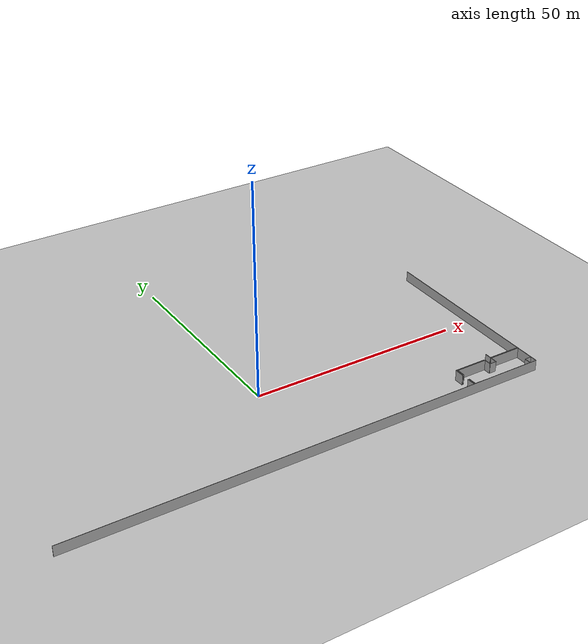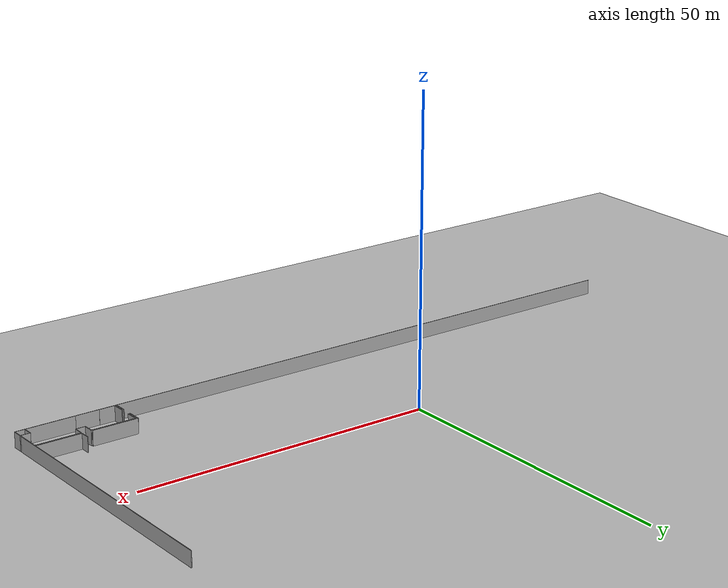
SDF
<sdf version="1.6">
 <world name="default">
  <model name="ground_plane">
   <static>1</static>
   <link name="link">
    <collision name="collision">
     <geometry><plane><normal>0 0 1</normal><size>100 100</size></plane></geometry>
     <surface><friction><ode><mu>100</mu><mu2>50</mu2></ode></friction></surface>
    </collision>
    <visual name="visual">
     <cast_shadows>0</cast_shadows>
     <geometry><plane><normal>0 0 1</normal><size>100 100</size></plane></geometry>
     <material>
      <script><uri>file://media/materials/scripts/gazebo.material</uri><name>Gazebo/Grey</name></script>
     </material>
    </visual>
   </link>
  </model>
  <model name="50057022">
   <static>1</static>
   <link name="Wall_531">
    <collision name="Wall_531_Collision">
     <geometry><box><size>2.10568604937 0.1 2.5</size></box></geometry>
     <pose>1.05284302469 0 1.25 0 0 0</pose>
    </collision>
    <visual name="Wall_531_Visual">
     <pose>1.05284302469 0 1.25 0 0 0</pose>
     <geometry><box><size>2.10568604937 0.1 2.5</size></box></geometry>
     <material>
      <script><uri>file://media/materials/scripts/gazebo.material</uri><name>Gazebo/Grey</name></script>
      <ambient>1 1 1 1</ambient>
     </material>
    </visual>
    <pose>96.0006539476 -47.5744372375 0 0 0 1.57079632679</pose>
   </link>
   <link name="Wall_532">
    <collision name="Wall_532_Collision">
     <geometry><box><size>2.11569803841 0.1 2.5</size></box></geometry>
     <pose>1.05784901921 0 1.25 0 0 0</pose>
    </collision>
    <visual name="Wall_532_Visual">
     <pose>1.05784901921 0 1.25 0 0 0</pose>
     <geometry><box><size>2.11569803841 0.1 2.5</size></box></geometry>
     <material>
      <script><uri>file://media/materials/scripts/gazebo.material</uri><name>Gazebo/Grey</name></script>
      <ambient>1 1 1 1</ambient>
     </material>
    </visual>
    <pose>96.0006539476 -43.7076549894 0 0 0 1.57079632679</pose>
   </link>
   <link name="Wall_533">
    <collision name="Wall_533_Collision">
     <geometry><box><size>7.5230592583 0.1 2.5</size></box></geometry>
     <pose>3.76152962915 0 1.25 0 0 0</pose>
    </collision>
    <visual name="Wall_533_Visual">
     <pose>3.76152962915 0 1.25 0 0 0</pose>
     <geometry><box><size>7.5230592583 0.1 2.5</size></box></geometry>
     <material>
      <script><uri>file://media/materials/scripts/gazebo.material</uri><name>Gazebo/Grey</name></script>
      <ambient>1 1 1 1</ambient>
     </material>
    </visual>
    <pose>96.0006539476 -41.591956951 0 0 0 0.0</pose>
   </link>
   <link name="Wall_534">
    <collision name="Wall_534_Collision">
     <geometry><box><size>1.70786790258 0.1 2.5</size></box></geometry>
     <pose>0.853933951289 0 1.25 0 0 0</pose>
    </collision>
    <visual name="Wall_534_Visual">
     <pose>0.853933951289 0 1.25 0 0 0</pose>
     <geometry><box><size>1.70786790258 0.1 2.5</size></box></geometry>
     <material>
      <script><uri>file://media/materials/scripts/gazebo.material</uri><name>Gazebo/Grey</name></script>
      <ambient>1 1 1 1</ambient>
     </material>
    </visual>
    <pose>103.523713206 -41.591956951 0 0 0 -1.57079632679</pose>
   </link>
   <link name="Wall_535">
    <collision name="Wall_535_Collision">
     <geometry><box><size>1.63195421353 0.1 2.5</size></box></geometry>
     <pose>0.815977106763 0 1.25 0 0 0</pose>
    </collision>
    <visual name="Wall_535_Visual">
     <pose>0.815977106763 0 1.25 0 0 0</pose>
     <geometry><box><size>1.63195421353 0.1 2.5</size></box></geometry>
     <material>
      <script><uri>file://media/materials/scripts/gazebo.material</uri><name>Gazebo/Grey</name></script>
      <ambient>1 1 1 1</ambient>
     </material>
    </visual>
    <pose>103.523713206 -43.2998248536 0 0 0 0.0</pose>
   </link>
   <link name="Wall_536">
    <collision name="Wall_536_Collision">
     <geometry><box><size>1.68239436084 0.1 2.5</size></box></geometry>
     <pose>0.841197180421 0 1.25 0 0 0</pose>
    </collision>
    <visual name="Wall_536_Visual">
     <pose>0.841197180421 0 1.25 0 0 0</pose>
     <geometry><box><size>1.68239436084 0.1 2.5</size></box></geometry>
     <material>
      <script><uri>file://media/materials/scripts/gazebo.material</uri><name>Gazebo/Grey</name></script>
      <ambient>1 1 1 1</ambient>
     </material>
    </visual>
    <pose>105.155667419 -43.2998248536 0 0 0 1.57079632679</pose>
   </link>
   <link name="Wall_537">
    <collision name="Wall_537_Collision">
     <geometry><box><size>7.67628071083 0.1 2.5</size></box></geometry>
     <pose>3.83814035541 0 1.25 0 0 0</pose>
    </collision>
    <visual name="Wall_537_Visual">
     <pose>3.83814035541 0 1.25 0 0 0</pose>
     <geometry><box><size>7.67628071083 0.1 2.5</size></box></geometry>
     <material>
      <script><uri>file://media/materials/scripts/gazebo.material</uri><name>Gazebo/Grey</name></script>
      <ambient>1 1 1 1</ambient>
     </material>
    </visual>
    <pose>105.155667419 -41.6174304927 0 0 0 0.0</pose>
   </link>
   <link name="Wall_538">
    <collision name="Wall_538_Collision">
     <geometry><box><size>0.284898118506 0.1 2.5</size></box></geometry>
     <pose>0.142449059253 0 1.25 0 0 0</pose>
    </collision>
    <visual name="Wall_538_Visual">
     <pose>0.142449059253 0 1.25 0 0 0</pose>
     <geometry><box><size>0.284898118506 0.1 2.5</size></box></geometry>
     <material>
      <script><uri>file://media/materials/scripts/gazebo.material</uri><name>Gazebo/Grey</name></script>
      <ambient>1 1 1 1</ambient>
     </material>
    </visual>
    <pose>112.83194813 -45.6732999262 0 0 0 -1.57079632679</pose>
   </link>
   <link name="Wall_539">
    <collision name="Wall_539_Collision">
     <geometry><box><size>1.65894856372 0.1 2.5</size></box></geometry>
     <pose>0.829474281862 0 1.25 0 0 0</pose>
    </collision>
    <visual name="Wall_539_Visual">
     <pose>0.829474281862 0 1.25 0 0 0</pose>
     <geometry><box><size>1.65894856372 0.1 2.5</size></box></geometry>
     <material>
      <script><uri>file://media/materials/scripts/gazebo.material</uri><name>Gazebo/Grey</name></script>
      <ambient>1 1 1 1</ambient>
     </material>
    </visual>
    <pose>112.83194813 -45.9581980447 0 0 0 3.14159265359</pose>
   </link>
   <link name="Wall_540">
    <collision name="Wall_540_Collision">
     <geometry><box><size>1.65932876584 0.1 2.5</size></box></geometry>
     <pose>0.829664382919 0 1.25 0 0 0</pose>
    </collision>
    <visual name="Wall_540_Visual">
     <pose>0.829664382919 0 1.25 0 0 0</pose>
     <geometry><box><size>1.65932876584 0.1 2.5</size></box></geometry>
     <material>
      <script><uri>file://media/materials/scripts/gazebo.material</uri><name>Gazebo/Grey</name></script>
      <ambient>1 1 1 1</ambient>
     </material>
    </visual>
    <pose>111.172999567 -45.9581980447 0 0 0 -1.57079632679</pose>
   </link>
   <link name="Wall_541">
    <collision name="Wall_541_Collision">
     <geometry><box><size>8.43072844191 0.1 2.5</size></box></geometry>
     <pose>4.21536422095 0 1.25 0 0 0</pose>
    </collision>
    <visual name="Wall_541_Visual">
     <pose>4.21536422095 0 1.25 0 0 0</pose>
     <geometry><box><size>8.43072844191 0.1 2.5</size></box></geometry>
     <material>
      <script><uri>file://media/materials/scripts/gazebo.material</uri><name>Gazebo/Grey</name></script>
      <ambient>1 1 1 1</ambient>
     </material>
    </visual>
    <pose>111.172999567 -47.6175268106 0 0 0 3.14159265359</pose>
   </link>
   <link name="Wall_542">
    <collision name="Wall_542_Collision">
     <geometry><box><size>2.68596666356 0.1 2.5</size></box></geometry>
     <pose>1.34298333178 0 1.25 0 0 0</pose>
    </collision>
    <visual name="Wall_542_Visual">
     <pose>1.34298333178 0 1.25 0 0 0</pose>
     <geometry><box><size>2.68596666356 0.1 2.5</size></box></geometry>
     <material>
      <script><uri>file://media/materials/scripts/gazebo.material</uri><name>Gazebo/Grey</name></script>
      <ambient>1 1 1 1</ambient>
     </material>
    </visual>
    <pose>98.6862749571 -47.6175268106 0 0 0 3.12554948293</pose>
   </link>
   <link name="Wall_556">
    <collision name="Wall_556_Collision">
     <geometry><box><size>7.59263624543 0.1 2.5</size></box></geometry>
     <pose>3.79631812271 0 1.25 0 0 0</pose>
    </collision>
    <visual name="Wall_556_Visual">
     <pose>3.79631812271 0 1.25 0 0 0</pose>
     <geometry><box><size>7.59263624543 0.1 2.5</size></box></geometry>
     <material>
      <script><uri>file://media/materials/scripts/gazebo.material</uri><name>Gazebo/Grey</name></script>
      <ambient>1 1 1 1</ambient>
     </material>
    </visual>
    <pose>112.76477909 -41.3658634263 0 0 0 3.14159265359</pose>
   </link>
   <link name="Wall_557">
    <collision name="Wall_557_Collision">
     <geometry><box><size>1.60901535256 0.1 2.5</size></box></geometry>
     <pose>0.804507676281 0 1.25 0 0 0</pose>
    </collision>
    <visual name="Wall_557_Visual">
     <pose>0.804507676281 0 1.25 0 0 0</pose>
     <geometry><box><size>1.60901535256 0.1 2.5</size></box></geometry>
     <material>
      <script><uri>file://media/materials/scripts/gazebo.material</uri><name>Gazebo/Grey</name></script>
      <ambient>1 1 1 1</ambient>
     </material>
    </visual>
    <pose>105.172142844 -41.3658634263 0 0 0 1.57079632679</pose>
   </link>
   <link name="Wall_560">
    <collision name="Wall_560_Collision">
     <geometry><box><size>7.7601786443 0.1 2.5</size></box></geometry>
     <pose>3.88008932215 0 1.25 0 0 0</pose>
    </collision>
    <visual name="Wall_560_Visual">
     <pose>3.88008932215 0 1.25 0 0 0</pose>
     <geometry><box><size>7.7601786443 0.1 2.5</size></box></geometry>
     <material>
      <script><uri>file://media/materials/scripts/gazebo.material</uri><name>Gazebo/Grey</name></script>
      <ambient>1 1 1 1</ambient>
     </material>
    </visual>
    <pose>103.463007602 -41.3658634263 0 0 0 3.14159265359</pose>
   </link>
   <link name="Wall_561">
    <collision name="Wall_561_Collision">
     <geometry><box><size>2.32962509537 0.1 2.5</size></box></geometry>
     <pose>1.16481254768 0 1.25 0 0 0</pose>
    </collision>
    <visual name="Wall_561_Visual">
     <pose>1.16481254768 0 1.25 0 0 0</pose>
     <geometry><box><size>2.32962509537 0.1 2.5</size></box></geometry>
     <material>
      <script><uri>file://media/materials/scripts/gazebo.material</uri><name>Gazebo/Grey</name></script>
      <ambient>1 1 1 1</ambient>
     </material>
    </visual>
    <pose>95.7028289572 -41.3658634263 0 0 0 -1.57079632679</pose>
   </link>
   <link name="Wall_562">
    <collision name="Wall_562_Collision">
     <geometry><box><size>2.17881158957 0.1 2.5</size></box></geometry>
     <pose>1.08940579479 0 1.25 0 0 0</pose>
    </collision>
    <visual name="Wall_562_Visual">
     <pose>1.08940579479 0 1.25 0 0 0</pose>
     <geometry><box><size>2.17881158957 0.1 2.5</size></box></geometry>
     <material>
      <script><uri>file://media/materials/scripts/gazebo.material</uri><name>Gazebo/Grey</name></script>
      <ambient>1 1 1 1</ambient>
     </material>
    </visual>
    <pose>95.7028289572 -45.4554441141 0 0 0 -1.57079632679</pose>
   </link>
   <link name="Wall_670">
    <collision name="Wall_670_Collision">
     <geometry><box><size>47.6342557037 0.1 2.5</size></box></geometry>
     <pose>23.8171278518 0 1.25 0 0 0</pose>
    </collision>
    <visual name="Wall_670_Visual">
     <pose>23.8171278518 0 1.25 0 0 0</pose>
     <geometry><box><size>47.6342557037 0.1 2.5</size></box></geometry>
     <material>
      <script><uri>file://media/materials/scripts/gazebo.material</uri><name>Gazebo/Grey</name></script>
      <ambient>1 1 1 1</ambient>
     </material>
    </visual>
    <pose>112.83194813 -47.6342557037 0 0 0 1.57079632679</pose>
   </link>
   <link name="Wall_671">
    <collision name="Wall_671_Collision">
     <geometry><box><size>112.83194813 0.1 2.5</size></box></geometry>
     <pose>56.4159740651 0 1.25 0 0 0</pose>
    </collision>
    <visual name="Wall_671_Visual">
     <pose>56.4159740651 0 1.25 0 0 0</pose>
     <geometry><box><size>112.83194813 0.1 2.5</size></box></geometry>
     <material>
      <script><uri>file://media/materials/scripts/gazebo.material</uri><name>Gazebo/Grey</name></script>
      <ambient>1 1 1 1</ambient>
     </material>
    </visual>
    <pose>112.83194813 -47.6342557037 0 0 0 3.14159265359</pose>
   </link>
   <pose>-56.55 23.8342557037 0 0 0 0</pose>
  </model>
 </world>
</sdf>
